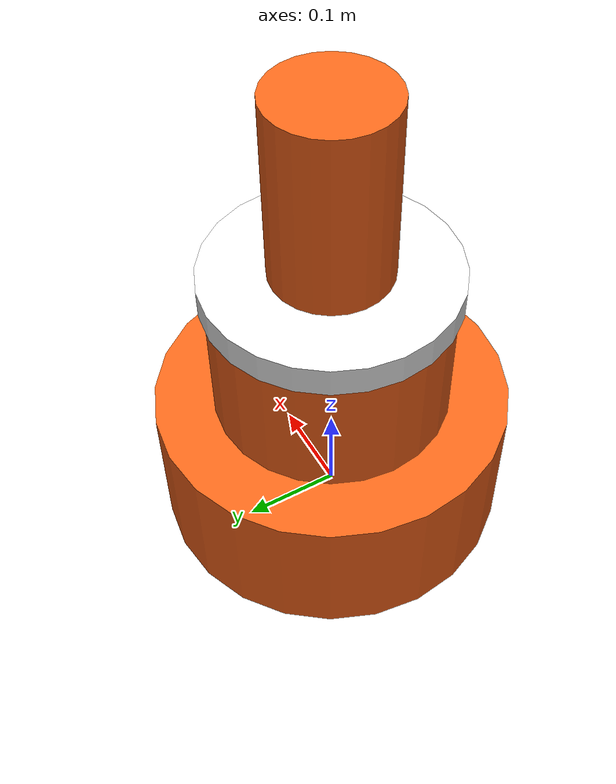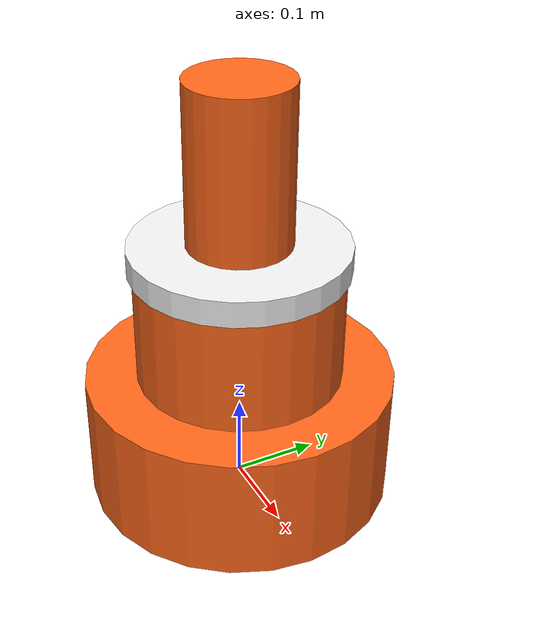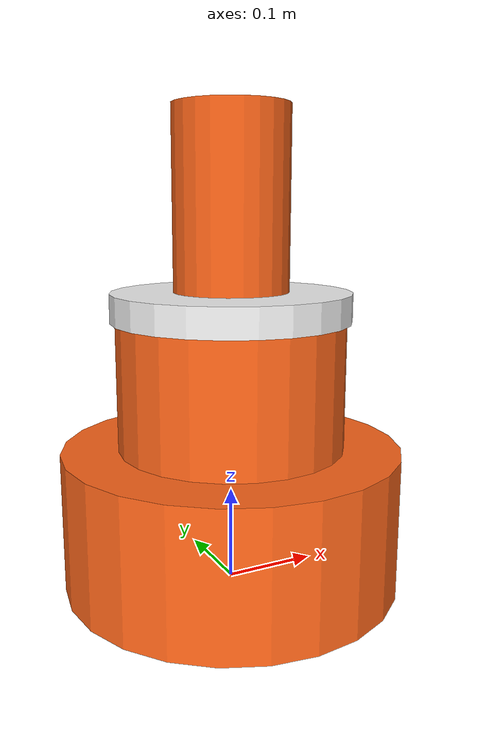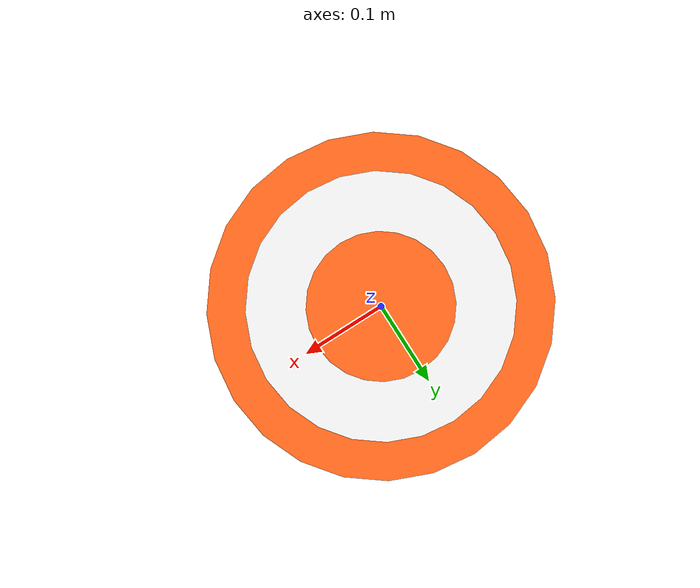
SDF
<?xml version="1.0" ?>
<!-- Дорожный конус (~0.5 м): аппроксимация конуса стопкой цилиндров убывающего
     радиуса + белая полоса. Низкий объект — визуальная цель, в /scan не попадает. -->
<sdf version="1.9">
  <model name="traffic_cone">
    <static>true</static>
    <link name="link">

      <visual name="base_visual">
        <pose>0 0 0.075 0 0 0</pose>
        <geometry><cylinder><radius>0.18</radius><length>0.15</length></cylinder></geometry>
        <material>
          <ambient>0.7 0.25 0.05 1</ambient>
          <diffuse>1 0.4 0.1 1</diffuse>
        </material>
      </visual>

      <visual name="mid_visual">
        <pose>0 0 0.225 0 0 0</pose>
        <geometry><cylinder><radius>0.12</radius><length>0.15</length></cylinder></geometry>
        <material>
          <ambient>0.7 0.25 0.05 1</ambient>
          <diffuse>1 0.4 0.1 1</diffuse>
        </material>
      </visual>

      <visual name="top_visual">
        <pose>0 0 0.4 0 0 0</pose>
        <geometry><cylinder><radius>0.06</radius><length>0.2</length></cylinder></geometry>
        <material>
          <ambient>0.7 0.25 0.05 1</ambient>
          <diffuse>1 0.4 0.1 1</diffuse>
        </material>
      </visual>

      <!-- Белая отражающая полоса -->
      <visual name="band_visual">
        <pose>0 0 0.3 0 0 0</pose>
        <geometry><cylinder><radius>0.125</radius><length>0.03</length></cylinder></geometry>
        <material>
          <ambient>0.8 0.8 0.8 1</ambient>
          <diffuse>0.95 0.95 0.95 1</diffuse>
        </material>
      </visual>

      <collision name="collision">
        <pose>0 0 0.25 0 0 0</pose>
        <geometry><cylinder><radius>0.18</radius><length>0.5</length></cylinder></geometry>
      </collision>

    </link>
  </model>
</sdf>
